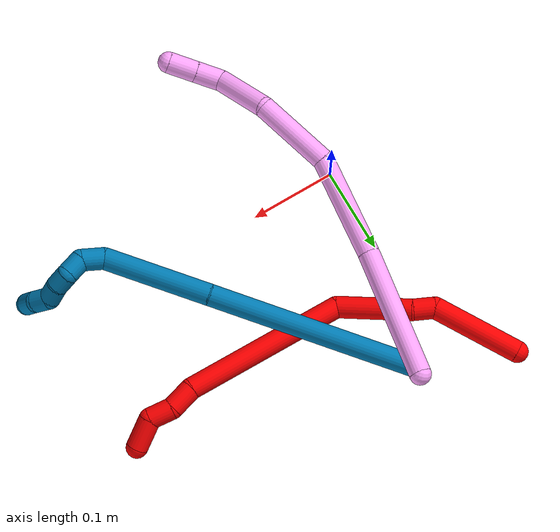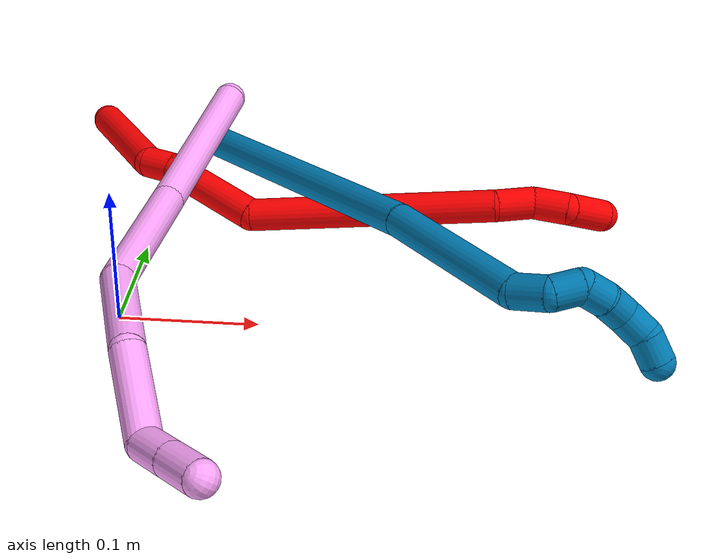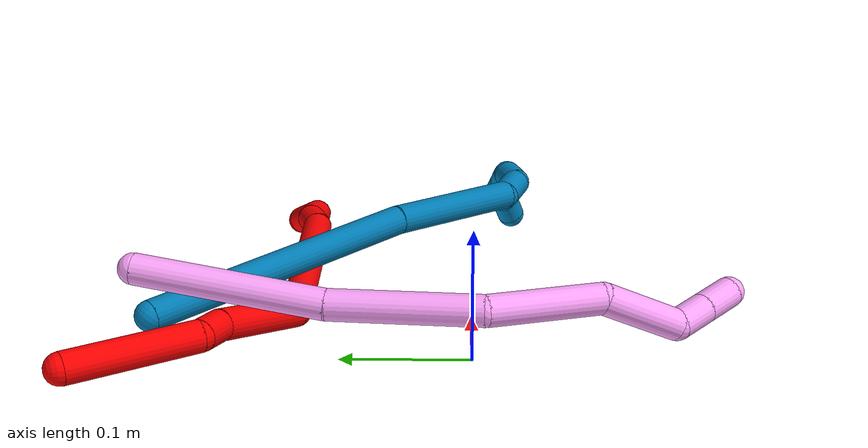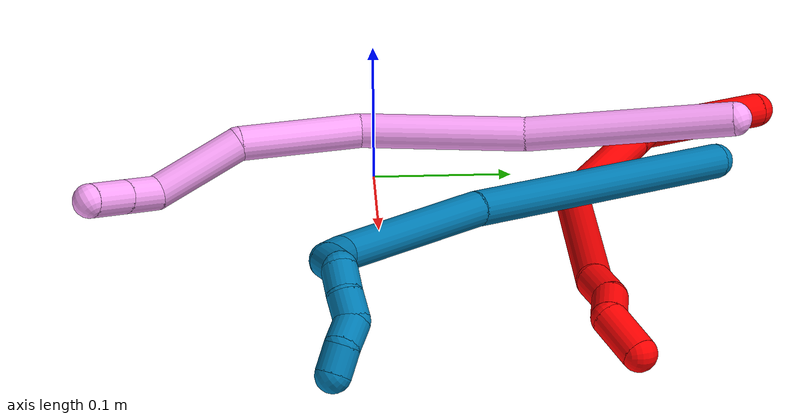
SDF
<sdf version="1.7">
 <world name="default">
  <model name="2">
   <static>0</static>
   <link name="2">
    <collision name="collision-cylinder-e_1_1_4">
     <pose>0.003386 -0.002809 -0.052029 3.08766 0.064894 1.75495</pose>
     <geometry><cylinder><radius>0.0125</radius><length>0.104428</length></cylinder></geometry>
     <surface>
      <friction><ode><mu>1.16</mu><mu2>1.16</mu2><slip1>0</slip1><slip2>0</slip2></ode></friction>
      <contact><ode><kp>1e+06</kp><kd>1</kd><max_vel>0</max_vel><min_depth>0.001</min_depth></ode></contact>
     </surface>
    </collision>
    <visual name="visual-cylinder-e_1_1_4">
     <pose>0.003386 -0.002809 -0.052029 3.08766 0.064894 1.75495</pose>
     <geometry><cylinder><radius>0.0125</radius><length>0.104428</length></cylinder></geometry>
     <material><ambient>1 0 0 1</ambient></material>
    </visual>
    <collision name="collision-cylinder-e_2_4_5">
     <pose>0.013764 -0.009334 -0.11386 2.77918 0.588215 2.05358</pose>
     <geometry><cylinder><radius>0.0125</radius><length>0.025204</length></cylinder></geometry>
     <surface>
      <friction><ode><mu>1.16</mu><mu2>1.16</mu2><slip1>0</slip1><slip2>0</slip2></ode></friction>
      <contact><ode><kp>1e+06</kp><kd>1</kd><max_vel>0</max_vel><min_depth>0.001</min_depth></ode></contact>
     </surface>
    </collision>
    <visual name="visual-cylinder-e_2_4_5">
     <pose>0.013764 -0.009334 -0.11386 2.77918 0.588215 2.05358</pose>
     <geometry><cylinder><radius>0.0125</radius><length>0.025204</length></cylinder></geometry>
     <material><ambient>1 0 0 1</ambient></material>
    </visual>
    <collision name="collision-cylinder-e_3_5_6">
     <pose>0.042576 -0.016428 -0.160769 3.05083 0.529761 2.80983</pose>
     <geometry><cylinder><radius>0.0125</radius><length>0.086355</length></cylinder></geometry>
     <surface>
      <friction><ode><mu>1.16</mu><mu2>1.16</mu2><slip1>0</slip1><slip2>0</slip2></ode></friction>
      <contact><ode><kp>1e+06</kp><kd>1</kd><max_vel>0</max_vel><min_depth>0.001</min_depth></ode></contact>
     </surface>
    </collision>
    <visual name="visual-cylinder-e_3_5_6">
     <pose>0.042576 -0.016428 -0.160769 3.05083 0.529761 2.80983</pose>
     <geometry><cylinder><radius>0.0125</radius><length>0.086355</length></cylinder></geometry>
     <material><ambient>1 0 0 1</ambient></material>
    </visual>
    <collision name="collision-cylinder-e_4_6_7">
     <pose>0.134497 -0.068271 -0.240158 2.28817 0.828398 1.53722</pose>
     <geometry><cylinder><radius>0.0125</radius><length>0.190276</length></cylinder></geometry>
     <surface>
      <friction><ode><mu>1.16</mu><mu2>1.16</mu2><slip1>0</slip1><slip2>0</slip2></ode></friction>
      <contact><ode><kp>1e+06</kp><kd>1</kd><max_vel>0</max_vel><min_depth>0.001</min_depth></ode></contact>
     </surface>
    </collision>
    <visual name="visual-cylinder-e_4_6_7">
     <pose>0.134497 -0.068271 -0.240158 2.28817 0.828398 1.53722</pose>
     <geometry><cylinder><radius>0.0125</radius><length>0.190276</length></cylinder></geometry>
     <material><ambient>1 0 0 1</ambient></material>
    </visual>
    <collision name="collision-cylinder-e_5_7_8">
     <pose>0.217669 -0.123979 -0.285139 1.92741 1.03685 1.37519</pose>
     <geometry><cylinder><radius>0.0125</radius><length>0.030366</length></cylinder></geometry>
     <surface>
      <friction><ode><mu>1.16</mu><mu2>1.16</mu2><slip1>0</slip1><slip2>0</slip2></ode></friction>
      <contact><ode><kp>1e+06</kp><kd>1</kd><max_vel>0</max_vel><min_depth>0.001</min_depth></ode></contact>
     </surface>
    </collision>
    <visual name="visual-cylinder-e_5_7_8">
     <pose>0.217669 -0.123979 -0.285139 1.92741 1.03685 1.37519</pose>
     <geometry><cylinder><radius>0.0125</radius><length>0.030366</length></cylinder></geometry>
     <material><ambient>1 0 0 1</ambient></material>
    </visual>
    <collision name="collision-cylinder-e_6_8_9">
     <pose>0.241339 -0.135541 -0.295088 2.60415 0.898335 2.10349</pose>
     <geometry><cylinder><radius>0.0125</radius><length>0.027102</length></cylinder></geometry>
     <surface>
      <friction><ode><mu>1.16</mu><mu2>1.16</mu2><slip1>0</slip1><slip2>0</slip2></ode></friction>
      <contact><ode><kp>1e+06</kp><kd>1</kd><max_vel>0</max_vel><min_depth>0.001</min_depth></ode></contact>
     </surface>
    </collision>
    <visual name="visual-cylinder-e_6_8_9">
     <pose>0.241339 -0.135541 -0.295088 2.60415 0.898335 2.10349</pose>
     <geometry><cylinder><radius>0.0125</radius><length>0.027102</length></cylinder></geometry>
     <material><ambient>1 0 0 1</ambient></material>
    </visual>
    <collision name="collision-cylinder-e_7_9_2">
     <pose>0.269812 -0.142024 -0.300155 0.780209 1.40053 0.667138</pose>
     <geometry><cylinder><radius>0.0125</radius><length>0.036269</length></cylinder></geometry>
     <surface>
      <friction><ode><mu>1.16</mu><mu2>1.16</mu2><slip1>0</slip1><slip2>0</slip2></ode></friction>
      <contact><ode><kp>1e+06</kp><kd>1</kd><max_vel>0</max_vel><min_depth>0.001</min_depth></ode></contact>
     </surface>
    </collision>
    <visual name="visual-cylinder-e_7_9_2">
     <pose>0.269812 -0.142024 -0.300155 0.780209 1.40053 0.667138</pose>
     <geometry><cylinder><radius>0.0125</radius><length>0.036269</length></cylinder></geometry>
     <material><ambient>1 0 0 1</ambient></material>
    </visual>
    <collision name="collision-sphere-2">
     <pose>0.287685 -0.144185 -0.297971 0 -0 0</pose>
     <geometry><sphere><radius>0.0125</radius></sphere></geometry>
     <surface>
      <friction><ode><mu>1.16</mu><mu2>1.16</mu2><slip1>0</slip1><slip2>0</slip2></ode></friction>
      <contact><ode><kp>1e+06</kp><kd>1</kd><max_vel>0</max_vel><min_depth>0.001</min_depth></ode></contact>
     </surface>
    </collision>
    <visual name="visual-sphere-2">
     <pose>0.287685 -0.144185 -0.297971 0 -0 0</pose>
     <geometry><sphere><radius>0.0125</radius></sphere></geometry>
     <material><ambient>1 0 0 1</ambient></material>
    </visual>
    <collision name="collision-sphere-9">
     <pose>0.25194 -0.139863 -0.302339 0 -0 0</pose>
     <geometry><sphere><radius>0.0125</radius></sphere></geometry>
     <surface>
      <friction><ode><mu>1.16</mu><mu2>1.16</mu2><slip1>0</slip1><slip2>0</slip2></ode></friction>
      <contact><ode><kp>1e+06</kp><kd>1</kd><max_vel>0</max_vel><min_depth>0.001</min_depth></ode></contact>
     </surface>
    </collision>
    <visual name="visual-sphere-9">
     <pose>0.25194 -0.139863 -0.302339 0 -0 0</pose>
     <geometry><sphere><radius>0.0125</radius></sphere></geometry>
     <material><ambient>1 0 0 1</ambient></material>
    </visual>
    <collision name="collision-sphere-4">
     <pose>0.006772 -0.005617 -0.104057 0 -0 0</pose>
     <geometry><sphere><radius>0.0125</radius></sphere></geometry>
     <surface>
      <friction><ode><mu>1.16</mu><mu2>1.16</mu2><slip1>0</slip1><slip2>0</slip2></ode></friction>
      <contact><ode><kp>1e+06</kp><kd>1</kd><max_vel>0</max_vel><min_depth>0.001</min_depth></ode></contact>
     </surface>
    </collision>
    <visual name="visual-sphere-4">
     <pose>0.006772 -0.005617 -0.104057 0 -0 0</pose>
     <geometry><sphere><radius>0.0125</radius></sphere></geometry>
     <material><ambient>1 0 0 1</ambient></material>
    </visual>
    <collision name="collision-sphere-1">
     <geometry><sphere><radius>0.0125</radius></sphere></geometry>
     <surface>
      <friction><ode><mu>1.16</mu><mu2>1.16</mu2><slip1>0</slip1><slip2>0</slip2></ode></friction>
      <contact><ode><kp>1e+06</kp><kd>1</kd><max_vel>0</max_vel><min_depth>0.001</min_depth></ode></contact>
     </surface>
    </collision>
    <visual name="visual-sphere-1">
     <geometry><sphere><radius>0.0125</radius></sphere></geometry>
     <material><ambient>1 0 0 1</ambient></material>
    </visual>
    <collision name="collision-sphere-8">
     <pose>0.230739 -0.13122 -0.287837 0 -0 0</pose>
     <geometry><sphere><radius>0.0125</radius></sphere></geometry>
     <surface>
      <friction><ode><mu>1.16</mu><mu2>1.16</mu2><slip1>0</slip1><slip2>0</slip2></ode></friction>
      <contact><ode><kp>1e+06</kp><kd>1</kd><max_vel>0</max_vel><min_depth>0.001</min_depth></ode></contact>
     </surface>
    </collision>
    <visual name="visual-sphere-8">
     <pose>0.230739 -0.13122 -0.287837 0 -0 0</pose>
     <geometry><sphere><radius>0.0125</radius></sphere></geometry>
     <material><ambient>1 0 0 1</ambient></material>
    </visual>
    <collision name="collision-sphere-5">
     <pose>0.020757 -0.013051 -0.123663 0 -0 0</pose>
     <geometry><sphere><radius>0.0125</radius></sphere></geometry>
     <surface>
      <friction><ode><mu>1.16</mu><mu2>1.16</mu2><slip1>0</slip1><slip2>0</slip2></ode></friction>
      <contact><ode><kp>1e+06</kp><kd>1</kd><max_vel>0</max_vel><min_depth>0.001</min_depth></ode></contact>
     </surface>
    </collision>
    <visual name="visual-sphere-5">
     <pose>0.020757 -0.013051 -0.123663 0 -0 0</pose>
     <geometry><sphere><radius>0.0125</radius></sphere></geometry>
     <material><ambient>1 0 0 1</ambient></material>
    </visual>
    <collision name="collision-sphere-6">
     <pose>0.064394 -0.019805 -0.197874 0 -0 0</pose>
     <geometry><sphere><radius>0.0125</radius></sphere></geometry>
     <surface>
      <friction><ode><mu>1.16</mu><mu2>1.16</mu2><slip1>0</slip1><slip2>0</slip2></ode></friction>
      <contact><ode><kp>1e+06</kp><kd>1</kd><max_vel>0</max_vel><min_depth>0.001</min_depth></ode></contact>
     </surface>
    </collision>
    <visual name="visual-sphere-6">
     <pose>0.064394 -0.019805 -0.197874 0 -0 0</pose>
     <geometry><sphere><radius>0.0125</radius></sphere></geometry>
     <material><ambient>1 0 0 1</ambient></material>
    </visual>
    <collision name="collision-sphere-7">
     <pose>0.204599 -0.116738 -0.282442 0 -0 0</pose>
     <geometry><sphere><radius>0.0125</radius></sphere></geometry>
     <surface>
      <friction><ode><mu>1.16</mu><mu2>1.16</mu2><slip1>0</slip1><slip2>0</slip2></ode></friction>
      <contact><ode><kp>1e+06</kp><kd>1</kd><max_vel>0</max_vel><min_depth>0.001</min_depth></ode></contact>
     </surface>
    </collision>
    <visual name="visual-sphere-7">
     <pose>0.204599 -0.116738 -0.282442 0 -0 0</pose>
     <geometry><sphere><radius>0.0125</radius></sphere></geometry>
     <material><ambient>1 0 0 1</ambient></material>
    </visual>
    <inertial>
     <pose>0.10581 -0.055054 -0.190849 0 -0 0</pose>
     <mass>0.5</mass>
     <inertia>
      <ixx>0.000482</ixx>
      <ixy>0</ixy>
      <ixz>0</ixz>
      <iyy>0.000895</iyy>
      <iyz>0</iyz>
      <izz>-0.000189</izz>
     </inertia>
    </inertial>
   </link>
   <pose>-0.072103 0.287745 0.018492 -1.6179 0.523692 0.438265</pose>
  </model>
  <model name="4">
   <static>0</static>
   <link name="4">
    <collision name="collision-cylinder-e_1_1_4">
     <pose>0.016629 -0.065666 0.034989 1.08123 0.219874 0.132323</pose>
     <geometry><cylinder><radius>0.0125</radius><length>0.152484</length></cylinder></geometry>
     <surface>
      <friction><ode><mu>1.16</mu><mu2>1.16</mu2><slip1>0</slip1><slip2>0</slip2></ode></friction>
      <contact><ode><kp>1e+06</kp><kd>1</kd><max_vel>0</max_vel><min_depth>0.001</min_depth></ode></contact>
     </surface>
    </collision>
    <visual name="visual-cylinder-e_1_1_4">
     <pose>0.016629 -0.065666 0.034989 1.08123 0.219874 0.132323</pose>
     <geometry><cylinder><radius>0.0125</radius><length>0.152484</length></cylinder></geometry>
     <material><ambient>1 0.65098 0.996078 1</ambient></material>
    </visual>
    <collision name="collision-cylinder-e_2_4_5">
     <pose>0.053166 -0.178994 0.100837 0.996219 0.337235 0.184637</pose>
     <geometry><cylinder><radius>0.0125</radius><length>0.120335</length></cylinder></geometry>
     <surface>
      <friction><ode><mu>1.16</mu><mu2>1.16</mu2><slip1>0</slip1><slip2>0</slip2></ode></friction>
      <contact><ode><kp>1e+06</kp><kd>1</kd><max_vel>0</max_vel><min_depth>0.001</min_depth></ode></contact>
     </surface>
    </collision>
    <visual name="visual-cylinder-e_2_4_5">
     <pose>0.053166 -0.178994 0.100837 0.996219 0.337235 0.184637</pose>
     <geometry><cylinder><radius>0.0125</radius><length>0.120335</length></cylinder></geometry>
     <material><ambient>1 0.65098 0.996078 1</ambient></material>
    </visual>
    <collision name="collision-cylinder-e_3_5_6">
     <pose>0.102259 -0.26009 0.144552 1.20369 0.683653 0.479357</pose>
     <geometry><cylinder><radius>0.0125</radius><length>0.092411</length></cylinder></geometry>
     <surface>
      <friction><ode><mu>1.16</mu><mu2>1.16</mu2><slip1>0</slip1><slip2>0</slip2></ode></friction>
      <contact><ode><kp>1e+06</kp><kd>1</kd><max_vel>0</max_vel><min_depth>0.001</min_depth></ode></contact>
     </surface>
    </collision>
    <visual name="visual-cylinder-e_3_5_6">
     <pose>0.102259 -0.26009 0.144552 1.20369 0.683653 0.479357</pose>
     <geometry><cylinder><radius>0.0125</radius><length>0.092411</length></cylinder></geometry>
     <material><ambient>1 0.65098 0.996078 1</ambient></material>
    </visual>
    <collision name="collision-cylinder-e_4_6_7">
     <pose>0.14626 -0.325043 0.155142 1.64258 0.438446 0.469954</pose>
     <geometry><cylinder><radius>0.0125</radius><length>0.069802</length></cylinder></geometry>
     <surface>
      <friction><ode><mu>1.16</mu><mu2>1.16</mu2><slip1>0</slip1><slip2>0</slip2></ode></friction>
      <contact><ode><kp>1e+06</kp><kd>1</kd><max_vel>0</max_vel><min_depth>0.001</min_depth></ode></contact>
     </surface>
    </collision>
    <visual name="visual-cylinder-e_4_6_7">
     <pose>0.14626 -0.325043 0.155142 1.64258 0.438446 0.469954</pose>
     <geometry><cylinder><radius>0.0125</radius><length>0.069802</length></cylinder></geometry>
     <material><ambient>1 0.65098 0.996078 1</ambient></material>
    </visual>
    <collision name="collision-cylinder-e_5_7_8">
     <pose>0.175543 -0.362832 0.153746 1.43291 1.1583 1.03534</pose>
     <geometry><cylinder><radius>0.0125</radius><length>0.031581</length></cylinder></geometry>
     <surface>
      <friction><ode><mu>1.16</mu><mu2>1.16</mu2><slip1>0</slip1><slip2>0</slip2></ode></friction>
      <contact><ode><kp>1e+06</kp><kd>1</kd><max_vel>0</max_vel><min_depth>0.001</min_depth></ode></contact>
     </surface>
    </collision>
    <visual name="visual-cylinder-e_5_7_8">
     <pose>0.175543 -0.362832 0.153746 1.43291 1.1583 1.03534</pose>
     <geometry><cylinder><radius>0.0125</radius><length>0.031581</length></cylinder></geometry>
     <material><ambient>1 0.65098 0.996078 1</ambient></material>
    </visual>
    <collision name="collision-cylinder-e_6_8_2">
     <pose>0.205303 -0.37573 0.155534 1.43321 1.15838 1.03568</pose>
     <geometry><cylinder><radius>0.0125</radius><length>0.033387</length></cylinder></geometry>
     <surface>
      <friction><ode><mu>1.16</mu><mu2>1.16</mu2><slip1>0</slip1><slip2>0</slip2></ode></friction>
      <contact><ode><kp>1e+06</kp><kd>1</kd><max_vel>0</max_vel><min_depth>0.001</min_depth></ode></contact>
     </surface>
    </collision>
    <visual name="visual-cylinder-e_6_8_2">
     <pose>0.205303 -0.37573 0.155534 1.43321 1.15838 1.03568</pose>
     <geometry><cylinder><radius>0.0125</radius><length>0.033387</length></cylinder></geometry>
     <material><ambient>1 0.65098 0.996078 1</ambient></material>
    </visual>
    <collision name="collision-sphere-2">
     <pose>0.220597 -0.382358 0.156452 0 -0 0</pose>
     <geometry><sphere><radius>0.0125</radius></sphere></geometry>
     <surface>
      <friction><ode><mu>1.16</mu><mu2>1.16</mu2><slip1>0</slip1><slip2>0</slip2></ode></friction>
      <contact><ode><kp>1e+06</kp><kd>1</kd><max_vel>0</max_vel><min_depth>0.001</min_depth></ode></contact>
     </surface>
    </collision>
    <visual name="visual-sphere-2">
     <pose>0.220597 -0.382358 0.156452 0 -0 0</pose>
     <geometry><sphere><radius>0.0125</radius></sphere></geometry>
     <material><ambient>1 0.65098 0.996078 1</ambient></material>
    </visual>
    <collision name="collision-sphere-4">
     <pose>0.033258 -0.131333 0.069979 0 -0 0</pose>
     <geometry><sphere><radius>0.0125</radius></sphere></geometry>
     <surface>
      <friction><ode><mu>1.16</mu><mu2>1.16</mu2><slip1>0</slip1><slip2>0</slip2></ode></friction>
      <contact><ode><kp>1e+06</kp><kd>1</kd><max_vel>0</max_vel><min_depth>0.001</min_depth></ode></contact>
     </surface>
    </collision>
    <visual name="visual-sphere-4">
     <pose>0.033258 -0.131333 0.069979 0 -0 0</pose>
     <geometry><sphere><radius>0.0125</radius></sphere></geometry>
     <material><ambient>1 0.65098 0.996078 1</ambient></material>
    </visual>
    <collision name="collision-sphere-1">
     <geometry><sphere><radius>0.0125</radius></sphere></geometry>
     <surface>
      <friction><ode><mu>1.16</mu><mu2>1.16</mu2><slip1>0</slip1><slip2>0</slip2></ode></friction>
      <contact><ode><kp>1e+06</kp><kd>1</kd><max_vel>0</max_vel><min_depth>0.001</min_depth></ode></contact>
     </surface>
    </collision>
    <visual name="visual-sphere-1">
     <geometry><sphere><radius>0.0125</radius></sphere></geometry>
     <material><ambient>1 0.65098 0.996078 1</ambient></material>
    </visual>
    <collision name="collision-sphere-8">
     <pose>0.190009 -0.369102 0.154616 0 -0 0</pose>
     <geometry><sphere><radius>0.0125</radius></sphere></geometry>
     <surface>
      <friction><ode><mu>1.16</mu><mu2>1.16</mu2><slip1>0</slip1><slip2>0</slip2></ode></friction>
      <contact><ode><kp>1e+06</kp><kd>1</kd><max_vel>0</max_vel><min_depth>0.001</min_depth></ode></contact>
     </surface>
    </collision>
    <visual name="visual-sphere-8">
     <pose>0.190009 -0.369102 0.154616 0 -0 0</pose>
     <geometry><sphere><radius>0.0125</radius></sphere></geometry>
     <material><ambient>1 0.65098 0.996078 1</ambient></material>
    </visual>
    <collision name="collision-sphere-5">
     <pose>0.073074 -0.226655 0.131695 0 -0 0</pose>
     <geometry><sphere><radius>0.0125</radius></sphere></geometry>
     <surface>
      <friction><ode><mu>1.16</mu><mu2>1.16</mu2><slip1>0</slip1><slip2>0</slip2></ode></friction>
      <contact><ode><kp>1e+06</kp><kd>1</kd><max_vel>0</max_vel><min_depth>0.001</min_depth></ode></contact>
     </surface>
    </collision>
    <visual name="visual-sphere-5">
     <pose>0.073074 -0.226655 0.131695 0 -0 0</pose>
     <geometry><sphere><radius>0.0125</radius></sphere></geometry>
     <material><ambient>1 0.65098 0.996078 1</ambient></material>
    </visual>
    <collision name="collision-sphere-6">
     <pose>0.131443 -0.293525 0.157409 0 -0 0</pose>
     <geometry><sphere><radius>0.0125</radius></sphere></geometry>
     <surface>
      <friction><ode><mu>1.16</mu><mu2>1.16</mu2><slip1>0</slip1><slip2>0</slip2></ode></friction>
      <contact><ode><kp>1e+06</kp><kd>1</kd><max_vel>0</max_vel><min_depth>0.001</min_depth></ode></contact>
     </surface>
    </collision>
    <visual name="visual-sphere-6">
     <pose>0.131443 -0.293525 0.157409 0 -0 0</pose>
     <geometry><sphere><radius>0.0125</radius></sphere></geometry>
     <material><ambient>1 0.65098 0.996078 1</ambient></material>
    </visual>
    <collision name="collision-sphere-7">
     <pose>0.161077 -0.356562 0.152876 0 -0 0</pose>
     <geometry><sphere><radius>0.0125</radius></sphere></geometry>
     <surface>
      <friction><ode><mu>1.16</mu><mu2>1.16</mu2><slip1>0</slip1><slip2>0</slip2></ode></friction>
      <contact><ode><kp>1e+06</kp><kd>1</kd><max_vel>0</max_vel><min_depth>0.001</min_depth></ode></contact>
     </surface>
    </collision>
    <visual name="visual-sphere-7">
     <pose>0.161077 -0.356562 0.152876 0 -0 0</pose>
     <geometry><sphere><radius>0.0125</radius></sphere></geometry>
     <material><ambient>1 0.65098 0.996078 1</ambient></material>
    </visual>
    <inertial>
     <pose>0.081981 -0.204558 0.10341 0 -0 0</pose>
     <mass>0.5</mass>
     <inertia>
      <ixx>0.000628</ixx>
      <ixy>0</ixy>
      <ixz>0</ixz>
      <iyy>0.000363</iyy>
      <iyz>0</iyz>
      <izz>0.000292</izz>
     </inertia>
    </inertial>
   </link>
   <pose>0.040739 0.259128 0.05652 0.743165 -0.454039 -0.476556</pose>
  </model>
  <model name="9">
   <static>0</static>
   <link name="9">
    <collision name="collision-cylinder-e_1_1_4">
     <pose>0.023666 -0.107068 -0.056223 2.05433 0.193257 0.318054</pose>
     <geometry><cylinder><radius>0.0125</radius><length>0.246453</length></cylinder></geometry>
     <surface>
      <friction><ode><mu>1.16</mu><mu2>1.16</mu2><slip1>0</slip1><slip2>0</slip2></ode></friction>
      <contact><ode><kp>1e+06</kp><kd>1</kd><max_vel>0</max_vel><min_depth>0.001</min_depth></ode></contact>
     </surface>
    </collision>
    <visual name="visual-cylinder-e_1_1_4">
     <pose>0.023666 -0.107068 -0.056223 2.05433 0.193257 0.318054</pose>
     <geometry><cylinder><radius>0.0125</radius><length>0.246453</length></cylinder></geometry>
     <material><ambient>0 0.490196 0.709804 1</ambient></material>
    </visual>
    <collision name="collision-cylinder-e_2_4_5">
     <pose>0.062091 -0.264461 -0.146258 2.1624 0.238771 0.442846</pose>
     <geometry><cylinder><radius>0.0125</radius><length>0.124796</length></cylinder></geometry>
     <surface>
      <friction><ode><mu>1.16</mu><mu2>1.16</mu2><slip1>0</slip1><slip2>0</slip2></ode></friction>
      <contact><ode><kp>1e+06</kp><kd>1</kd><max_vel>0</max_vel><min_depth>0.001</min_depth></ode></contact>
     </surface>
    </collision>
    <visual name="visual-cylinder-e_2_4_5">
     <pose>0.062091 -0.264461 -0.146258 2.1624 0.238771 0.442846</pose>
     <geometry><cylinder><radius>0.0125</radius><length>0.124796</length></cylinder></geometry>
     <material><ambient>0 0.490196 0.709804 1</ambient></material>
    </visual>
    <collision name="collision-cylinder-e_3_5_6">
     <pose>0.08308 -0.326521 -0.181499 1.69196 0.485083 0.544837</pose>
     <geometry><cylinder><radius>0.0125</radius><length>0.026731</length></cylinder></geometry>
     <surface>
      <friction><ode><mu>1.16</mu><mu2>1.16</mu2><slip1>0</slip1><slip2>0</slip2></ode></friction>
      <contact><ode><kp>1e+06</kp><kd>1</kd><max_vel>0</max_vel><min_depth>0.001</min_depth></ode></contact>
     </surface>
    </collision>
    <visual name="visual-cylinder-e_3_5_6">
     <pose>0.08308 -0.326521 -0.181499 1.69196 0.485083 0.544837</pose>
     <geometry><cylinder><radius>0.0125</radius><length>0.026731</length></cylinder></geometry>
     <material><ambient>0 0.490196 0.709804 1</ambient></material>
    </visual>
    <collision name="collision-cylinder-e_4_6_7">
     <pose>0.097881 -0.343563 -0.178528 0.878303 0.893375 0.442622</pose>
     <geometry><cylinder><radius>0.0125</radius><length>0.021993</length></cylinder></geometry>
     <surface>
      <friction><ode><mu>1.16</mu><mu2>1.16</mu2><slip1>0</slip1><slip2>0</slip2></ode></friction>
      <contact><ode><kp>1e+06</kp><kd>1</kd><max_vel>0</max_vel><min_depth>0.001</min_depth></ode></contact>
     </surface>
    </collision>
    <visual name="visual-cylinder-e_4_6_7">
     <pose>0.097881 -0.343563 -0.178528 0.878303 0.893375 0.442622</pose>
     <geometry><cylinder><radius>0.0125</radius><length>0.021993</length></cylinder></geometry>
     <material><ambient>0 0.490196 0.709804 1</ambient></material>
    </visual>
    <collision name="collision-cylinder-e_5_7_8">
     <pose>0.116265 -0.349769 -0.175819 2.65213 1.37791 2.55275</pose>
     <geometry><cylinder><radius>0.0125</radius><length>0.020004</length></cylinder></geometry>
     <surface>
      <friction><ode><mu>1.16</mu><mu2>1.16</mu2><slip1>0</slip1><slip2>0</slip2></ode></friction>
      <contact><ode><kp>1e+06</kp><kd>1</kd><max_vel>0</max_vel><min_depth>0.001</min_depth></ode></contact>
     </surface>
    </collision>
    <visual name="visual-cylinder-e_5_7_8">
     <pose>0.116265 -0.349769 -0.175819 2.65213 1.37791 2.55275</pose>
     <geometry><cylinder><radius>0.0125</radius><length>0.020004</length></cylinder></geometry>
     <material><ambient>0 0.490196 0.709804 1</ambient></material>
    </visual>
    <collision name="collision-cylinder-e_6_8_9">
     <pose>0.135811 -0.349503 -0.17955 -2.6213 1.33391 -2.48955</pose>
     <geometry><cylinder><radius>0.0125</radius><length>0.020018</length></cylinder></geometry>
     <surface>
      <friction><ode><mu>1.16</mu><mu2>1.16</mu2><slip1>0</slip1><slip2>0</slip2></ode></friction>
      <contact><ode><kp>1e+06</kp><kd>1</kd><max_vel>0</max_vel><min_depth>0.001</min_depth></ode></contact>
     </surface>
    </collision>
    <visual name="visual-cylinder-e_6_8_9">
     <pose>0.135811 -0.349503 -0.17955 -2.6213 1.33391 -2.48955</pose>
     <geometry><cylinder><radius>0.0125</radius><length>0.020018</length></cylinder></geometry>
     <material><ambient>0 0.490196 0.709804 1</ambient></material>
    </visual>
    <collision name="collision-cylinder-e_7_9_10">
     <pose>0.153105 -0.351521 -0.187304 2.63322 0.8576 2.10803</pose>
     <geometry><cylinder><radius>0.0125</radius><length>0.020005</length></cylinder></geometry>
     <surface>
      <friction><ode><mu>1.16</mu><mu2>1.16</mu2><slip1>0</slip1><slip2>0</slip2></ode></friction>
      <contact><ode><kp>1e+06</kp><kd>1</kd><max_vel>0</max_vel><min_depth>0.001</min_depth></ode></contact>
     </surface>
    </collision>
    <visual name="visual-cylinder-e_7_9_10">
     <pose>0.153105 -0.351521 -0.187304 2.63322 0.8576 2.10803</pose>
     <geometry><cylinder><radius>0.0125</radius><length>0.020005</length></cylinder></geometry>
     <material><ambient>0 0.490196 0.709804 1</ambient></material>
    </visual>
    <collision name="collision-cylinder-e_8_10_2">
     <pose>0.167523 -0.354298 -0.200293 -3.08556 0.75493 -3.00046</pose>
     <geometry><cylinder><radius>0.0125</radius><length>0.02</length></cylinder></geometry>
     <surface>
      <friction><ode><mu>1.16</mu><mu2>1.16</mu2><slip1>0</slip1><slip2>0</slip2></ode></friction>
      <contact><ode><kp>1e+06</kp><kd>1</kd><max_vel>0</max_vel><min_depth>0.001</min_depth></ode></contact>
     </surface>
    </collision>
    <visual name="visual-cylinder-e_8_10_2">
     <pose>0.167523 -0.354298 -0.200293 -3.08556 0.75493 -3.00046</pose>
     <geometry><cylinder><radius>0.0125</radius><length>0.02</length></cylinder></geometry>
     <material><ambient>0 0.490196 0.709804 1</ambient></material>
    </visual>
    <collision name="collision-sphere-2">
     <pose>0.174375 -0.35389 -0.207565 0 -0 0</pose>
     <geometry><sphere><radius>0.0125</radius></sphere></geometry>
     <surface>
      <friction><ode><mu>1.16</mu><mu2>1.16</mu2><slip1>0</slip1><slip2>0</slip2></ode></friction>
      <contact><ode><kp>1e+06</kp><kd>1</kd><max_vel>0</max_vel><min_depth>0.001</min_depth></ode></contact>
     </surface>
    </collision>
    <visual name="visual-sphere-2">
     <pose>0.174375 -0.35389 -0.207565 0 -0 0</pose>
     <geometry><sphere><radius>0.0125</radius></sphere></geometry>
     <material><ambient>0 0.490196 0.709804 1</ambient></material>
    </visual>
    <collision name="collision-sphere-10">
     <pose>0.16067 -0.354706 -0.193021 0 -0 0</pose>
     <geometry><sphere><radius>0.0125</radius></sphere></geometry>
     <surface>
      <friction><ode><mu>1.16</mu><mu2>1.16</mu2><slip1>0</slip1><slip2>0</slip2></ode></friction>
      <contact><ode><kp>1e+06</kp><kd>1</kd><max_vel>0</max_vel><min_depth>0.001</min_depth></ode></contact>
     </surface>
    </collision>
    <visual name="visual-sphere-10">
     <pose>0.16067 -0.354706 -0.193021 0 -0 0</pose>
     <geometry><sphere><radius>0.0125</radius></sphere></geometry>
     <material><ambient>0 0.490196 0.709804 1</ambient></material>
    </visual>
    <collision name="collision-sphere-9">
     <pose>0.145541 -0.348335 -0.181588 0 -0 0</pose>
     <geometry><sphere><radius>0.0125</radius></sphere></geometry>
     <surface>
      <friction><ode><mu>1.16</mu><mu2>1.16</mu2><slip1>0</slip1><slip2>0</slip2></ode></friction>
      <contact><ode><kp>1e+06</kp><kd>1</kd><max_vel>0</max_vel><min_depth>0.001</min_depth></ode></contact>
     </surface>
    </collision>
    <visual name="visual-sphere-9">
     <pose>0.145541 -0.348335 -0.181588 0 -0 0</pose>
     <geometry><sphere><radius>0.0125</radius></sphere></geometry>
     <material><ambient>0 0.490196 0.709804 1</ambient></material>
    </visual>
    <collision name="collision-sphere-4">
     <pose>0.047333 -0.214137 -0.112446 0 -0 0</pose>
     <geometry><sphere><radius>0.0125</radius></sphere></geometry>
     <surface>
      <friction><ode><mu>1.16</mu><mu2>1.16</mu2><slip1>0</slip1><slip2>0</slip2></ode></friction>
      <contact><ode><kp>1e+06</kp><kd>1</kd><max_vel>0</max_vel><min_depth>0.001</min_depth></ode></contact>
     </surface>
    </collision>
    <visual name="visual-sphere-4">
     <pose>0.047333 -0.214137 -0.112446 0 -0 0</pose>
     <geometry><sphere><radius>0.0125</radius></sphere></geometry>
     <material><ambient>0 0.490196 0.709804 1</ambient></material>
    </visual>
    <collision name="collision-sphere-1">
     <geometry><sphere><radius>0.0125</radius></sphere></geometry>
     <surface>
      <friction><ode><mu>1.16</mu><mu2>1.16</mu2><slip1>0</slip1><slip2>0</slip2></ode></friction>
      <contact><ode><kp>1e+06</kp><kd>1</kd><max_vel>0</max_vel><min_depth>0.001</min_depth></ode></contact>
     </surface>
    </collision>
    <visual name="visual-sphere-1">
     <geometry><sphere><radius>0.0125</radius></sphere></geometry>
     <material><ambient>0 0.490196 0.709804 1</ambient></material>
    </visual>
    <collision name="collision-sphere-8">
     <pose>0.126082 -0.350671 -0.177512 0 -0 0</pose>
     <geometry><sphere><radius>0.0125</radius></sphere></geometry>
     <surface>
      <friction><ode><mu>1.16</mu><mu2>1.16</mu2><slip1>0</slip1><slip2>0</slip2></ode></friction>
      <contact><ode><kp>1e+06</kp><kd>1</kd><max_vel>0</max_vel><min_depth>0.001</min_depth></ode></contact>
     </surface>
    </collision>
    <visual name="visual-sphere-8">
     <pose>0.126082 -0.350671 -0.177512 0 -0 0</pose>
     <geometry><sphere><radius>0.0125</radius></sphere></geometry>
     <material><ambient>0 0.490196 0.709804 1</ambient></material>
    </visual>
    <collision name="collision-sphere-5">
     <pose>0.076848 -0.314784 -0.18007 0 -0 0</pose>
     <geometry><sphere><radius>0.0125</radius></sphere></geometry>
     <surface>
      <friction><ode><mu>1.16</mu><mu2>1.16</mu2><slip1>0</slip1><slip2>0</slip2></ode></friction>
      <contact><ode><kp>1e+06</kp><kd>1</kd><max_vel>0</max_vel><min_depth>0.001</min_depth></ode></contact>
     </surface>
    </collision>
    <visual name="visual-sphere-5">
     <pose>0.076848 -0.314784 -0.18007 0 -0 0</pose>
     <geometry><sphere><radius>0.0125</radius></sphere></geometry>
     <material><ambient>0 0.490196 0.709804 1</ambient></material>
    </visual>
    <collision name="collision-sphere-6">
     <pose>0.089312 -0.338258 -0.182928 0 -0 0</pose>
     <geometry><sphere><radius>0.0125</radius></sphere></geometry>
     <surface>
      <friction><ode><mu>1.16</mu><mu2>1.16</mu2><slip1>0</slip1><slip2>0</slip2></ode></friction>
      <contact><ode><kp>1e+06</kp><kd>1</kd><max_vel>0</max_vel><min_depth>0.001</min_depth></ode></contact>
     </surface>
    </collision>
    <visual name="visual-sphere-6">
     <pose>0.089312 -0.338258 -0.182928 0 -0 0</pose>
     <geometry><sphere><radius>0.0125</radius></sphere></geometry>
     <material><ambient>0 0.490196 0.709804 1</ambient></material>
    </visual>
    <collision name="collision-sphere-7">
     <pose>0.106449 -0.348868 -0.174127 0 -0 0</pose>
     <geometry><sphere><radius>0.0125</radius></sphere></geometry>
     <surface>
      <friction><ode><mu>1.16</mu><mu2>1.16</mu2><slip1>0</slip1><slip2>0</slip2></ode></friction>
      <contact><ode><kp>1e+06</kp><kd>1</kd><max_vel>0</max_vel><min_depth>0.001</min_depth></ode></contact>
     </surface>
    </collision>
    <visual name="visual-sphere-7">
     <pose>0.106449 -0.348868 -0.174127 0 -0 0</pose>
     <geometry><sphere><radius>0.0125</radius></sphere></geometry>
     <material><ambient>0 0.490196 0.709804 1</ambient></material>
    </visual>
    <inertial>
     <pose>0.058825 -0.207573 -0.111502 0 -0 0</pose>
     <mass>0.5</mass>
     <inertia>
      <ixx>0.00179</ixx>
      <ixy>0</ixy>
      <ixz>0</ixz>
      <iyy>-0.000121</iyy>
      <iyz>0</iyz>
      <izz>0.000926</izz>
     </inertia>
    </inertial>
   </link>
   <pose>0.033712 0.246679 0.021115 -0.76897 0.55175 0.406033</pose>
  </model>
 </world>
</sdf>
